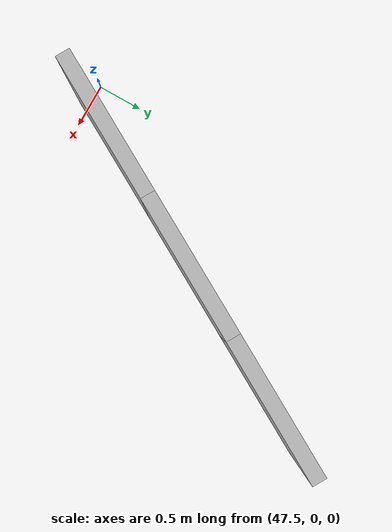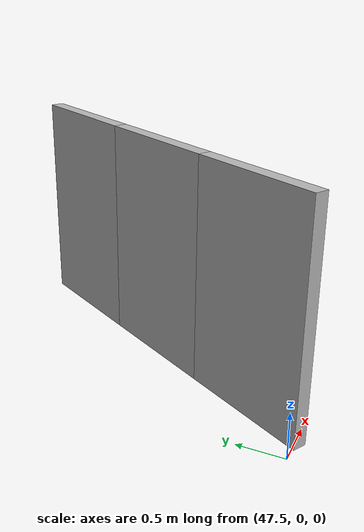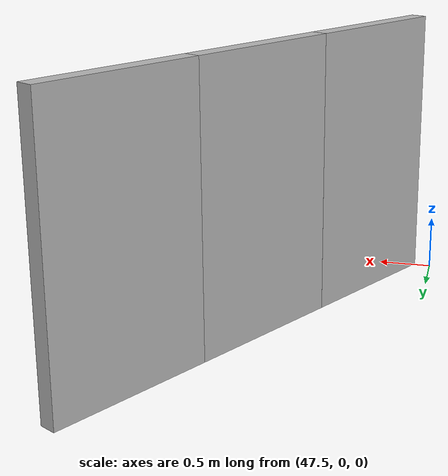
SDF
<?xml version="1.0" ?>
<sdf version="1.6">
  <model name="sps_0435">
    <pose frame="">0 0 0 0 -0 0</pose>
    <static>1</static>
    <self_collide>0</self_collide>
    <allow_auto_disable>0</allow_auto_disable>
    <link name="Wall6684">
      <kinematic>0</kinematic>
      <gravity>1</gravity>
      <self_collide>0</self_collide>
      <collision name="collision">
        <geometry>
          <box>
            <size>1.50316 0.15 2.5</size>
          </box>
        </geometry>
        <pose frame="">0 0 0 0 -0 0</pose>
      </collision>
      <visual name="visual">
        <geometry>
          <box>
            <size>1.50316 0.15 2.5</size>
          </box>
        </geometry>
        <pose frame="">0 0 0 0 -0 0</pose>
        <cast_shadows>1</cast_shadows>
        <transparency>0.0</transparency>
      </visual>
      <pose frame="">49.5344 3.23018 1.25 0 0 -2.0776</pose>
    </link>
    <link name="Wall6685">
      <kinematic>0</kinematic>
      <gravity>1</gravity>
      <self_collide>0</self_collide>
      <collision name="collision">
        <geometry>
          <box>
            <size>1.50292 0.15 2.5</size>
          </box>
        </geometry>
        <pose frame="">0 0 0 0 -0 0</pose>
      </collision>
      <visual name="visual">
        <geometry>
          <box>
            <size>1.50292 0.15 2.5</size>
          </box>
        </geometry>
        <pose frame="">0 0 0 0 -0 0</pose>
        <cast_shadows>1</cast_shadows>
        <transparency>0.0</transparency>
      </visual>
      <pose frame="">48.806 1.91548 1.25 0 0 -2.07597</pose>
    </link>
    <link name="Wall6686">
      <kinematic>0</kinematic>
      <gravity>1</gravity>
      <self_collide>0</self_collide>
      <collision name="collision">
        <geometry>
          <box>
            <size>1.50304 0.15 2.5</size>
          </box>
        </geometry>
        <pose frame="">0 0 0 0 -0 0</pose>
      </collision>
      <visual name="visual">
        <geometry>
          <box>
            <size>1.50304 0.15 2.5</size>
          </box>
        </geometry>
        <pose frame="">0 0 0 0 -0 0</pose>
        <cast_shadows>1</cast_shadows>
        <transparency>0.0</transparency>
      </visual>
      <pose frame="">48.0796 0.599685 1.25 0 0 -2.07444</pose>
    </link>
  </model>
</sdf>
